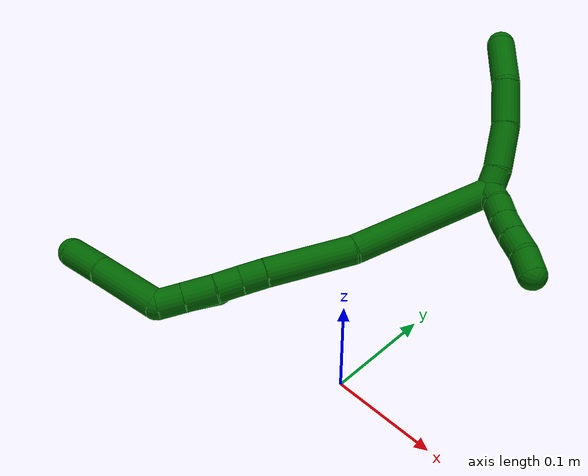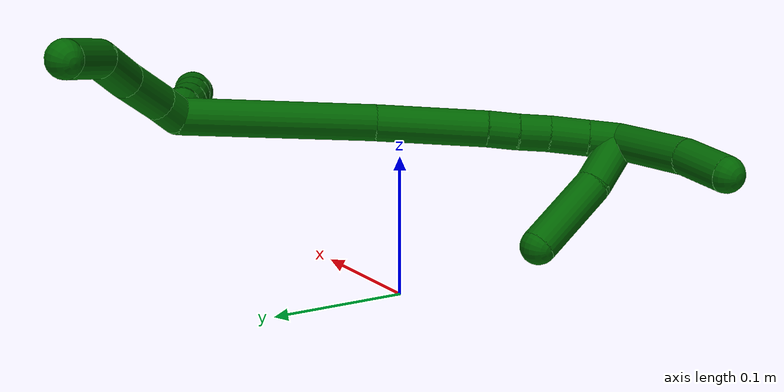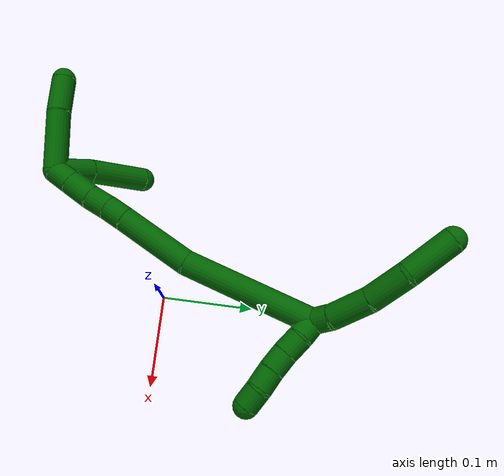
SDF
<sdf version="1.7">
 <world name="default">
  <model name="6">
   <static>0</static>
   <link name="6">
    <collision name="collision-cylinder-e_1_2_8">
     <pose>0.000537 0.010116 -0.000943 -1.66374 0.052789 -0.057936</pose>
     <geometry><cylinder><radius>0.0125</radius><length>0.020348</length></cylinder></geometry>
     <surface>
      <friction><ode><mu>1.16</mu><mu2>1.16</mu2><slip1>0</slip1><slip2>0</slip2></ode></friction>
      <contact><ode><kp>1e+06</kp><kd>1</kd><max_vel>0</max_vel><min_depth>0.001</min_depth></ode></contact>
     </surface>
    </collision>
    <visual name="visual-cylinder-e_1_2_8">
     <pose>0.000537 0.010116 -0.000943 -1.66374 0.052789 -0.057936</pose>
     <geometry><cylinder><radius>0.0125</radius><length>0.020348</length></cylinder></geometry>
     <material><ambient>0 0.392157 0.003922 1</ambient></material>
    </visual>
    <collision name="collision-cylinder-e_2_8_9">
     <pose>0.003218 0.039665 -0.007878 -1.8699 0.105039 -0.142199</pose>
     <geometry><cylinder><radius>0.0125</radius><length>0.040898</length></cylinder></geometry>
     <surface>
      <friction><ode><mu>1.16</mu><mu2>1.16</mu2><slip1>0</slip1><slip2>0</slip2></ode></friction>
      <contact><ode><kp>1e+06</kp><kd>1</kd><max_vel>0</max_vel><min_depth>0.001</min_depth></ode></contact>
     </surface>
    </collision>
    <visual name="visual-cylinder-e_2_8_9">
     <pose>0.003218 0.039665 -0.007878 -1.8699 0.105039 -0.142199</pose>
     <geometry><cylinder><radius>0.0125</radius><length>0.040898</length></cylinder></geometry>
     <material><ambient>0 0.392157 0.003922 1</ambient></material>
    </visual>
    <collision name="collision-cylinder-e_3_9_10">
     <pose>0.006878 0.076992 -0.022752 -2.03153 0.075757 -0.122086</pose>
     <geometry><cylinder><radius>0.0125</radius><length>0.040068</length></cylinder></geometry>
     <surface>
      <friction><ode><mu>1.16</mu><mu2>1.16</mu2><slip1>0</slip1><slip2>0</slip2></ode></friction>
      <contact><ode><kp>1e+06</kp><kd>1</kd><max_vel>0</max_vel><min_depth>0.001</min_depth></ode></contact>
     </surface>
    </collision>
    <visual name="visual-cylinder-e_3_9_10">
     <pose>0.006878 0.076992 -0.022752 -2.03153 0.075757 -0.122086</pose>
     <geometry><cylinder><radius>0.0125</radius><length>0.040068</length></cylinder></geometry>
     <material><ambient>0 0.392157 0.003922 1</ambient></material>
    </visual>
    <collision name="collision-cylinder-e_4_10_6">
     <pose>0.016869 0.112971 -0.045552 -2.22672 0.355586 -0.700003</pose>
     <geometry><cylinder><radius>0.0125</radius><length>0.048686</length></cylinder></geometry>
     <surface>
      <friction><ode><mu>1.16</mu><mu2>1.16</mu2><slip1>0</slip1><slip2>0</slip2></ode></friction>
      <contact><ode><kp>1e+06</kp><kd>1</kd><max_vel>0</max_vel><min_depth>0.001</min_depth></ode></contact>
     </surface>
    </collision>
    <visual name="visual-cylinder-e_4_10_6">
     <pose>0.016869 0.112971 -0.045552 -2.22672 0.355586 -0.700003</pose>
     <geometry><cylinder><radius>0.0125</radius><length>0.048686</length></cylinder></geometry>
     <material><ambient>0 0.392157 0.003922 1</ambient></material>
    </visual>
    <collision name="collision-cylinder-e_1_2_11">
     <pose>-0.0049 -0.004102 0.007692 0.489943 -0.512141 -0.130719</pose>
     <geometry><cylinder><radius>0.0125</radius><length>0.02</length></cylinder></geometry>
     <surface>
      <friction><ode><mu>1.16</mu><mu2>1.16</mu2><slip1>0</slip1><slip2>0</slip2></ode></friction>
      <contact><ode><kp>1e+06</kp><kd>1</kd><max_vel>0</max_vel><min_depth>0.001</min_depth></ode></contact>
     </surface>
    </collision>
    <visual name="visual-cylinder-e_1_2_11">
     <pose>-0.0049 -0.004102 0.007692 0.489943 -0.512141 -0.130719</pose>
     <geometry><cylinder><radius>0.0125</radius><length>0.02</length></cylinder></geometry>
     <material><ambient>0 0.392157 0.003922 1</ambient></material>
    </visual>
    <collision name="collision-cylinder-e_2_11_12">
     <pose>-0.013521 -0.014109 0.022545 0.689446 -0.381129 -0.138308</pose>
     <geometry><cylinder><radius>0.0125</radius><length>0.02</length></cylinder></geometry>
     <surface>
      <friction><ode><mu>1.16</mu><mu2>1.16</mu2><slip1>0</slip1><slip2>0</slip2></ode></friction>
      <contact><ode><kp>1e+06</kp><kd>1</kd><max_vel>0</max_vel><min_depth>0.001</min_depth></ode></contact>
     </surface>
    </collision>
    <visual name="visual-cylinder-e_2_11_12">
     <pose>-0.013521 -0.014109 0.022545 0.689446 -0.381129 -0.138308</pose>
     <geometry><cylinder><radius>0.0125</radius><length>0.02</length></cylinder></geometry>
     <material><ambient>0 0.392157 0.003922 1</ambient></material>
    </visual>
    <collision name="collision-cylinder-e_3_12_13">
     <pose>-0.020819 -0.025211 0.037465 0.590282 -0.36601 -0.112415</pose>
     <geometry><cylinder><radius>0.0125</radius><length>0.02</length></cylinder></geometry>
     <surface>
      <friction><ode><mu>1.16</mu><mu2>1.16</mu2><slip1>0</slip1><slip2>0</slip2></ode></friction>
      <contact><ode><kp>1e+06</kp><kd>1</kd><max_vel>0</max_vel><min_depth>0.001</min_depth></ode></contact>
     </surface>
    </collision>
    <visual name="visual-cylinder-e_3_12_13">
     <pose>-0.020819 -0.025211 0.037465 0.590282 -0.36601 -0.112415</pose>
     <geometry><cylinder><radius>0.0125</radius><length>0.02</length></cylinder></geometry>
     <material><ambient>0 0.392157 0.003922 1</ambient></material>
    </visual>
    <collision name="collision-cylinder-e_4_13_14">
     <pose>-0.02734 -0.035299 0.053434 0.53723 -0.29856 -0.082753</pose>
     <geometry><cylinder><radius>0.0125</radius><length>0.02</length></cylinder></geometry>
     <surface>
      <friction><ode><mu>1.16</mu><mu2>1.16</mu2><slip1>0</slip1><slip2>0</slip2></ode></friction>
      <contact><ode><kp>1e+06</kp><kd>1</kd><max_vel>0</max_vel><min_depth>0.001</min_depth></ode></contact>
     </surface>
    </collision>
    <visual name="visual-cylinder-e_4_13_14">
     <pose>-0.02734 -0.035299 0.053434 0.53723 -0.29856 -0.082753</pose>
     <geometry><cylinder><radius>0.0125</radius><length>0.02</length></cylinder></geometry>
     <material><ambient>0 0.392157 0.003922 1</ambient></material>
    </visual>
    <collision name="collision-cylinder-e_5_14_5">
     <pose>-0.031413 -0.046948 0.068929 0.747971 -0.113446 -0.044563</pose>
     <geometry><cylinder><radius>0.0125</radius><length>0.02</length></cylinder></geometry>
     <surface>
      <friction><ode><mu>1.16</mu><mu2>1.16</mu2><slip1>0</slip1><slip2>0</slip2></ode></friction>
      <contact><ode><kp>1e+06</kp><kd>1</kd><max_vel>0</max_vel><min_depth>0.001</min_depth></ode></contact>
     </surface>
    </collision>
    <visual name="visual-cylinder-e_5_14_5">
     <pose>-0.031413 -0.046948 0.068929 0.747971 -0.113446 -0.044563</pose>
     <geometry><cylinder><radius>0.0125</radius><length>0.02</length></cylinder></geometry>
     <material><ambient>0 0.392157 0.003922 1</ambient></material>
    </visual>
    <collision name="collision-cylinder-e_1_2_15">
     <pose>-0.036749 -0.047503 -0.028563 2.11216 -0.585445 -0.979214</pose>
     <geometry><cylinder><radius>0.0125</radius><length>0.13301</length></cylinder></geometry>
     <surface>
      <friction><ode><mu>1.16</mu><mu2>1.16</mu2><slip1>0</slip1><slip2>0</slip2></ode></friction>
      <contact><ode><kp>1e+06</kp><kd>1</kd><max_vel>0</max_vel><min_depth>0.001</min_depth></ode></contact>
     </surface>
    </collision>
    <visual name="visual-cylinder-e_1_2_15">
     <pose>-0.036749 -0.047503 -0.028563 2.11216 -0.585445 -0.979214</pose>
     <geometry><cylinder><radius>0.0125</radius><length>0.13301</length></cylinder></geometry>
     <material><ambient>0 0.392157 0.003922 1</ambient></material>
    </visual>
    <collision name="collision-cylinder-e_2_15_16">
     <pose>-0.093059 -0.118831 -0.079241 2.31899 -0.541745 -1.13388</pose>
     <geometry><cylinder><radius>0.0125</radius><length>0.075876</length></cylinder></geometry>
     <surface>
      <friction><ode><mu>1.16</mu><mu2>1.16</mu2><slip1>0</slip1><slip2>0</slip2></ode></friction>
      <contact><ode><kp>1e+06</kp><kd>1</kd><max_vel>0</max_vel><min_depth>0.001</min_depth></ode></contact>
     </surface>
    </collision>
    <visual name="visual-cylinder-e_2_15_16">
     <pose>-0.093059 -0.118831 -0.079241 2.31899 -0.541745 -1.13388</pose>
     <geometry><cylinder><radius>0.0125</radius><length>0.075876</length></cylinder></geometry>
     <material><ambient>0 0.392157 0.003922 1</ambient></material>
    </visual>
    <collision name="collision-cylinder-e_3_16_17">
     <pose>-0.117707 -0.149665 -0.107432 2.28499 -0.501426 -1.02239</pose>
     <geometry><cylinder><radius>0.0125</radius><length>0.02116</length></cylinder></geometry>
     <surface>
      <friction><ode><mu>1.16</mu><mu2>1.16</mu2><slip1>0</slip1><slip2>0</slip2></ode></friction>
      <contact><ode><kp>1e+06</kp><kd>1</kd><max_vel>0</max_vel><min_depth>0.001</min_depth></ode></contact>
     </surface>
    </collision>
    <visual name="visual-cylinder-e_3_16_17">
     <pose>-0.117707 -0.149665 -0.107432 2.28499 -0.501426 -1.02239</pose>
     <geometry><cylinder><radius>0.0125</radius><length>0.02116</length></cylinder></geometry>
     <material><ambient>0 0.392157 0.003922 1</ambient></material>
    </visual>
    <collision name="collision-cylinder-e_4_17_18">
     <pose>-0.128383 -0.163822 -0.119163 2.24017 -0.550254 -1.05612</pose>
     <geometry><cylinder><radius>0.0125</radius><length>0.021383</length></cylinder></geometry>
     <surface>
      <friction><ode><mu>1.16</mu><mu2>1.16</mu2><slip1>0</slip1><slip2>0</slip2></ode></friction>
      <contact><ode><kp>1e+06</kp><kd>1</kd><max_vel>0</max_vel><min_depth>0.001</min_depth></ode></contact>
     </surface>
    </collision>
    <visual name="visual-cylinder-e_4_17_18">
     <pose>-0.128383 -0.163822 -0.119163 2.24017 -0.550254 -1.05612</pose>
     <geometry><cylinder><radius>0.0125</radius><length>0.021383</length></cylinder></geometry>
     <material><ambient>0 0.392157 0.003922 1</ambient></material>
    </visual>
    <collision name="collision-cylinder-e_5_18_19">
     <pose>-0.140169 -0.179545 -0.132919 2.3277 -0.48357 -1.03941</pose>
     <geometry><cylinder><radius>0.0125</radius><length>0.026651</length></cylinder></geometry>
     <surface>
      <friction><ode><mu>1.16</mu><mu2>1.16</mu2><slip1>0</slip1><slip2>0</slip2></ode></friction>
      <contact><ode><kp>1e+06</kp><kd>1</kd><max_vel>0</max_vel><min_depth>0.001</min_depth></ode></contact>
     </surface>
    </collision>
    <visual name="visual-cylinder-e_5_18_19">
     <pose>-0.140169 -0.179545 -0.132919 2.3277 -0.48357 -1.03941</pose>
     <geometry><cylinder><radius>0.0125</radius><length>0.026651</length></cylinder></geometry>
     <material><ambient>0 0.392157 0.003922 1</ambient></material>
    </visual>
    <collision name="collision-cylinder-e_6_19_1">
     <pose>-0.151492 -0.195112 -0.147726 2.33545 -0.48681 -1.05469</pose>
     <geometry><cylinder><radius>0.0125</radius><length>0.021921</length></cylinder></geometry>
     <surface>
      <friction><ode><mu>1.16</mu><mu2>1.16</mu2><slip1>0</slip1><slip2>0</slip2></ode></friction>
      <contact><ode><kp>1e+06</kp><kd>1</kd><max_vel>0</max_vel><min_depth>0.001</min_depth></ode></contact>
     </surface>
    </collision>
    <visual name="visual-cylinder-e_6_19_1">
     <pose>-0.151492 -0.195112 -0.147726 2.33545 -0.48681 -1.05469</pose>
     <geometry><cylinder><radius>0.0125</radius><length>0.021921</length></cylinder></geometry>
     <material><ambient>0 0.392157 0.003922 1</ambient></material>
    </visual>
    <collision name="collision-cylinder-e_1_1_20">
     <pose>-0.137499 -0.198054 -0.159086 -2.42558 1.25877 -2.19236</pose>
     <geometry><cylinder><radius>0.0125</radius><length>0.040182</length></cylinder></geometry>
     <surface>
      <friction><ode><mu>1.16</mu><mu2>1.16</mu2><slip1>0</slip1><slip2>0</slip2></ode></friction>
      <contact><ode><kp>1e+06</kp><kd>1</kd><max_vel>0</max_vel><min_depth>0.001</min_depth></ode></contact>
     </surface>
    </collision>
    <visual name="visual-cylinder-e_1_1_20">
     <pose>-0.137499 -0.198054 -0.159086 -2.42558 1.25877 -2.19236</pose>
     <geometry><cylinder><radius>0.0125</radius><length>0.040182</length></cylinder></geometry>
     <material><ambient>0 0.392157 0.003922 1</ambient></material>
    </visual>
    <collision name="collision-cylinder-e_2_20_4">
     <pose>-0.089647 -0.185981 -0.165911 -1.83518 1.28913 -1.55285</pose>
     <geometry><cylinder><radius>0.0125</radius><length>0.059818</length></cylinder></geometry>
     <surface>
      <friction><ode><mu>1.16</mu><mu2>1.16</mu2><slip1>0</slip1><slip2>0</slip2></ode></friction>
      <contact><ode><kp>1e+06</kp><kd>1</kd><max_vel>0</max_vel><min_depth>0.001</min_depth></ode></contact>
     </surface>
    </collision>
    <visual name="visual-cylinder-e_2_20_4">
     <pose>-0.089647 -0.185981 -0.165911 -1.83518 1.28913 -1.55285</pose>
     <geometry><cylinder><radius>0.0125</radius><length>0.059818</length></cylinder></geometry>
     <material><ambient>0 0.392157 0.003922 1</ambient></material>
    </visual>
    <collision name="collision-cylinder-e_1_1_21">
     <pose>-0.158909 -0.200251 -0.185088 -3.08127 -0.074414 1.77939</pose>
     <geometry><cylinder><radius>0.0125</radius><length>0.061593</length></cylinder></geometry>
     <surface>
      <friction><ode><mu>1.16</mu><mu2>1.16</mu2><slip1>0</slip1><slip2>0</slip2></ode></friction>
      <contact><ode><kp>1e+06</kp><kd>1</kd><max_vel>0</max_vel><min_depth>0.001</min_depth></ode></contact>
     </surface>
    </collision>
    <visual name="visual-cylinder-e_1_1_21">
     <pose>-0.158909 -0.200251 -0.185088 -3.08127 -0.074414 1.77939</pose>
     <geometry><cylinder><radius>0.0125</radius><length>0.061593</length></cylinder></geometry>
     <material><ambient>0 0.392157 0.003922 1</ambient></material>
    </visual>
    <collision name="collision-cylinder-e_2_21_3">
     <pose>-0.160124 -0.197864 -0.23491 -3.11366 0.056015 -2.2167</pose>
     <geometry><cylinder><radius>0.0125</radius><length>0.038407</length></cylinder></geometry>
     <surface>
      <friction><ode><mu>1.16</mu><mu2>1.16</mu2><slip1>0</slip1><slip2>0</slip2></ode></friction>
      <contact><ode><kp>1e+06</kp><kd>1</kd><max_vel>0</max_vel><min_depth>0.001</min_depth></ode></contact>
     </surface>
    </collision>
    <visual name="visual-cylinder-e_2_21_3">
     <pose>-0.160124 -0.197864 -0.23491 -3.11366 0.056015 -2.2167</pose>
     <geometry><cylinder><radius>0.0125</radius><length>0.038407</length></cylinder></geometry>
     <material><ambient>0 0.392157 0.003922 1</ambient></material>
    </visual>
    <collision name="collision-sphere-3">
     <pose>-0.159048 -0.197329 -0.254075 0 -0 0</pose>
     <geometry><sphere><radius>0.0125</radius></sphere></geometry>
     <surface>
      <friction><ode><mu>1.16</mu><mu2>1.16</mu2><slip1>0</slip1><slip2>0</slip2></ode></friction>
      <contact><ode><kp>1e+06</kp><kd>1</kd><max_vel>0</max_vel><min_depth>0.001</min_depth></ode></contact>
     </surface>
    </collision>
    <visual name="visual-sphere-3">
     <pose>-0.159048 -0.197329 -0.254075 0 -0 0</pose>
     <geometry><sphere><radius>0.0125</radius></sphere></geometry>
     <material><ambient>0 0.392157 0.003922 1</ambient></material>
    </visual>
    <collision name="collision-sphere-21">
     <pose>-0.161199 -0.1984 -0.215744 0 -0 0</pose>
     <geometry><sphere><radius>0.0125</radius></sphere></geometry>
     <surface>
      <friction><ode><mu>1.16</mu><mu2>1.16</mu2><slip1>0</slip1><slip2>0</slip2></ode></friction>
      <contact><ode><kp>1e+06</kp><kd>1</kd><max_vel>0</max_vel><min_depth>0.001</min_depth></ode></contact>
     </surface>
    </collision>
    <visual name="visual-sphere-21">
     <pose>-0.161199 -0.1984 -0.215744 0 -0 0</pose>
     <geometry><sphere><radius>0.0125</radius></sphere></geometry>
     <material><ambient>0 0.392157 0.003922 1</ambient></material>
    </visual>
    <collision name="collision-sphere-4">
     <pose>-0.060917 -0.177957 -0.168084 0 -0 0</pose>
     <geometry><sphere><radius>0.0125</radius></sphere></geometry>
     <surface>
      <friction><ode><mu>1.16</mu><mu2>1.16</mu2><slip1>0</slip1><slip2>0</slip2></ode></friction>
      <contact><ode><kp>1e+06</kp><kd>1</kd><max_vel>0</max_vel><min_depth>0.001</min_depth></ode></contact>
     </surface>
    </collision>
    <visual name="visual-sphere-4">
     <pose>-0.060917 -0.177957 -0.168084 0 -0 0</pose>
     <geometry><sphere><radius>0.0125</radius></sphere></geometry>
     <material><ambient>0 0.392157 0.003922 1</ambient></material>
    </visual>
    <collision name="collision-sphere-20">
     <pose>-0.118378 -0.194006 -0.163739 0 -0 0</pose>
     <geometry><sphere><radius>0.0125</radius></sphere></geometry>
     <surface>
      <friction><ode><mu>1.16</mu><mu2>1.16</mu2><slip1>0</slip1><slip2>0</slip2></ode></friction>
      <contact><ode><kp>1e+06</kp><kd>1</kd><max_vel>0</max_vel><min_depth>0.001</min_depth></ode></contact>
     </surface>
    </collision>
    <visual name="visual-sphere-20">
     <pose>-0.118378 -0.194006 -0.163739 0 -0 0</pose>
     <geometry><sphere><radius>0.0125</radius></sphere></geometry>
     <material><ambient>0 0.392157 0.003922 1</ambient></material>
    </visual>
    <collision name="collision-sphere-11">
     <pose>-0.009801 -0.008204 0.015383 0 -0 0</pose>
     <geometry><sphere><radius>0.0125</radius></sphere></geometry>
     <surface>
      <friction><ode><mu>1.16</mu><mu2>1.16</mu2><slip1>0</slip1><slip2>0</slip2></ode></friction>
      <contact><ode><kp>1e+06</kp><kd>1</kd><max_vel>0</max_vel><min_depth>0.001</min_depth></ode></contact>
     </surface>
    </collision>
    <visual name="visual-sphere-11">
     <pose>-0.009801 -0.008204 0.015383 0 -0 0</pose>
     <geometry><sphere><radius>0.0125</radius></sphere></geometry>
     <material><ambient>0 0.392157 0.003922 1</ambient></material>
    </visual>
    <collision name="collision-sphere-6">
     <pose>0.025344 0.131055 -0.059469 0 -0 0</pose>
     <geometry><sphere><radius>0.0125</radius></sphere></geometry>
     <surface>
      <friction><ode><mu>1.16</mu><mu2>1.16</mu2><slip1>0</slip1><slip2>0</slip2></ode></friction>
      <contact><ode><kp>1e+06</kp><kd>1</kd><max_vel>0</max_vel><min_depth>0.001</min_depth></ode></contact>
     </surface>
    </collision>
    <visual name="visual-sphere-6">
     <pose>0.025344 0.131055 -0.059469 0 -0 0</pose>
     <geometry><sphere><radius>0.0125</radius></sphere></geometry>
     <material><ambient>0 0.392157 0.003922 1</ambient></material>
    </visual>
    <collision name="collision-sphere-10">
     <pose>0.008394 0.094886 -0.031634 0 -0 0</pose>
     <geometry><sphere><radius>0.0125</radius></sphere></geometry>
     <surface>
      <friction><ode><mu>1.16</mu><mu2>1.16</mu2><slip1>0</slip1><slip2>0</slip2></ode></friction>
      <contact><ode><kp>1e+06</kp><kd>1</kd><max_vel>0</max_vel><min_depth>0.001</min_depth></ode></contact>
     </surface>
    </collision>
    <visual name="visual-sphere-10">
     <pose>0.008394 0.094886 -0.031634 0 -0 0</pose>
     <geometry><sphere><radius>0.0125</radius></sphere></geometry>
     <material><ambient>0 0.392157 0.003922 1</ambient></material>
    </visual>
    <collision name="collision-sphere-9">
     <pose>0.005362 0.059099 -0.01387 0 -0 0</pose>
     <geometry><sphere><radius>0.0125</radius></sphere></geometry>
     <surface>
      <friction><ode><mu>1.16</mu><mu2>1.16</mu2><slip1>0</slip1><slip2>0</slip2></ode></friction>
      <contact><ode><kp>1e+06</kp><kd>1</kd><max_vel>0</max_vel><min_depth>0.001</min_depth></ode></contact>
     </surface>
    </collision>
    <visual name="visual-sphere-9">
     <pose>0.005362 0.059099 -0.01387 0 -0 0</pose>
     <geometry><sphere><radius>0.0125</radius></sphere></geometry>
     <material><ambient>0 0.392157 0.003922 1</ambient></material>
    </visual>
    <collision name="collision-sphere-2">
     <geometry><sphere><radius>0.0125</radius></sphere></geometry>
     <surface>
      <friction><ode><mu>1.16</mu><mu2>1.16</mu2><slip1>0</slip1><slip2>0</slip2></ode></friction>
      <contact><ode><kp>1e+06</kp><kd>1</kd><max_vel>0</max_vel><min_depth>0.001</min_depth></ode></contact>
     </surface>
    </collision>
    <visual name="visual-sphere-2">
     <geometry><sphere><radius>0.0125</radius></sphere></geometry>
     <material><ambient>0 0.392157 0.003922 1</ambient></material>
    </visual>
    <collision name="collision-sphere-19">
     <pose>-0.146365 -0.188122 -0.14102 0 -0 0</pose>
     <geometry><sphere><radius>0.0125</radius></sphere></geometry>
     <surface>
      <friction><ode><mu>1.16</mu><mu2>1.16</mu2><slip1>0</slip1><slip2>0</slip2></ode></friction>
      <contact><ode><kp>1e+06</kp><kd>1</kd><max_vel>0</max_vel><min_depth>0.001</min_depth></ode></contact>
     </surface>
    </collision>
    <visual name="visual-sphere-19">
     <pose>-0.146365 -0.188122 -0.14102 0 -0 0</pose>
     <geometry><sphere><radius>0.0125</radius></sphere></geometry>
     <material><ambient>0 0.392157 0.003922 1</ambient></material>
    </visual>
    <collision name="collision-sphere-8">
     <pose>0.001074 0.020232 -0.001886 0 -0 0</pose>
     <geometry><sphere><radius>0.0125</radius></sphere></geometry>
     <surface>
      <friction><ode><mu>1.16</mu><mu2>1.16</mu2><slip1>0</slip1><slip2>0</slip2></ode></friction>
      <contact><ode><kp>1e+06</kp><kd>1</kd><max_vel>0</max_vel><min_depth>0.001</min_depth></ode></contact>
     </surface>
    </collision>
    <visual name="visual-sphere-8">
     <pose>0.001074 0.020232 -0.001886 0 -0 0</pose>
     <geometry><sphere><radius>0.0125</radius></sphere></geometry>
     <material><ambient>0 0.392157 0.003922 1</ambient></material>
    </visual>
    <collision name="collision-sphere-12">
     <pose>-0.01724 -0.020013 0.029708 0 -0 0</pose>
     <geometry><sphere><radius>0.0125</radius></sphere></geometry>
     <surface>
      <friction><ode><mu>1.16</mu><mu2>1.16</mu2><slip1>0</slip1><slip2>0</slip2></ode></friction>
      <contact><ode><kp>1e+06</kp><kd>1</kd><max_vel>0</max_vel><min_depth>0.001</min_depth></ode></contact>
     </surface>
    </collision>
    <visual name="visual-sphere-12">
     <pose>-0.01724 -0.020013 0.029708 0 -0 0</pose>
     <geometry><sphere><radius>0.0125</radius></sphere></geometry>
     <material><ambient>0 0.392157 0.003922 1</ambient></material>
    </visual>
    <collision name="collision-sphere-13">
     <pose>-0.024398 -0.030408 0.045223 0 -0 0</pose>
     <geometry><sphere><radius>0.0125</radius></sphere></geometry>
     <surface>
      <friction><ode><mu>1.16</mu><mu2>1.16</mu2><slip1>0</slip1><slip2>0</slip2></ode></friction>
      <contact><ode><kp>1e+06</kp><kd>1</kd><max_vel>0</max_vel><min_depth>0.001</min_depth></ode></contact>
     </surface>
    </collision>
    <visual name="visual-sphere-13">
     <pose>-0.024398 -0.030408 0.045223 0 -0 0</pose>
     <geometry><sphere><radius>0.0125</radius></sphere></geometry>
     <material><ambient>0 0.392157 0.003922 1</ambient></material>
    </visual>
    <collision name="collision-sphere-14">
     <pose>-0.030281 -0.04019 0.061645 0 -0 0</pose>
     <geometry><sphere><radius>0.0125</radius></sphere></geometry>
     <surface>
      <friction><ode><mu>1.16</mu><mu2>1.16</mu2><slip1>0</slip1><slip2>0</slip2></ode></friction>
      <contact><ode><kp>1e+06</kp><kd>1</kd><max_vel>0</max_vel><min_depth>0.001</min_depth></ode></contact>
     </surface>
    </collision>
    <visual name="visual-sphere-14">
     <pose>-0.030281 -0.04019 0.061645 0 -0 0</pose>
     <geometry><sphere><radius>0.0125</radius></sphere></geometry>
     <material><ambient>0 0.392157 0.003922 1</ambient></material>
    </visual>
    <collision name="collision-sphere-5">
     <pose>-0.032545 -0.053706 0.076212 0 -0 0</pose>
     <geometry><sphere><radius>0.0125</radius></sphere></geometry>
     <surface>
      <friction><ode><mu>1.16</mu><mu2>1.16</mu2><slip1>0</slip1><slip2>0</slip2></ode></friction>
      <contact><ode><kp>1e+06</kp><kd>1</kd><max_vel>0</max_vel><min_depth>0.001</min_depth></ode></contact>
     </surface>
    </collision>
    <visual name="visual-sphere-5">
     <pose>-0.032545 -0.053706 0.076212 0 -0 0</pose>
     <geometry><sphere><radius>0.0125</radius></sphere></geometry>
     <material><ambient>0 0.392157 0.003922 1</ambient></material>
    </visual>
    <collision name="collision-sphere-15">
     <pose>-0.073497 -0.095007 -0.057127 0 -0 0</pose>
     <geometry><sphere><radius>0.0125</radius></sphere></geometry>
     <surface>
      <friction><ode><mu>1.16</mu><mu2>1.16</mu2><slip1>0</slip1><slip2>0</slip2></ode></friction>
      <contact><ode><kp>1e+06</kp><kd>1</kd><max_vel>0</max_vel><min_depth>0.001</min_depth></ode></contact>
     </surface>
    </collision>
    <visual name="visual-sphere-15">
     <pose>-0.073497 -0.095007 -0.057127 0 -0 0</pose>
     <geometry><sphere><radius>0.0125</radius></sphere></geometry>
     <material><ambient>0 0.392157 0.003922 1</ambient></material>
    </visual>
    <collision name="collision-sphere-16">
     <pose>-0.112621 -0.142655 -0.101355 0 -0 0</pose>
     <geometry><sphere><radius>0.0125</radius></sphere></geometry>
     <surface>
      <friction><ode><mu>1.16</mu><mu2>1.16</mu2><slip1>0</slip1><slip2>0</slip2></ode></friction>
      <contact><ode><kp>1e+06</kp><kd>1</kd><max_vel>0</max_vel><min_depth>0.001</min_depth></ode></contact>
     </surface>
    </collision>
    <visual name="visual-sphere-16">
     <pose>-0.112621 -0.142655 -0.101355 0 -0 0</pose>
     <geometry><sphere><radius>0.0125</radius></sphere></geometry>
     <material><ambient>0 0.392157 0.003922 1</ambient></material>
    </visual>
    <collision name="collision-sphere-17">
     <pose>-0.122792 -0.156675 -0.113508 0 -0 0</pose>
     <geometry><sphere><radius>0.0125</radius></sphere></geometry>
     <surface>
      <friction><ode><mu>1.16</mu><mu2>1.16</mu2><slip1>0</slip1><slip2>0</slip2></ode></friction>
      <contact><ode><kp>1e+06</kp><kd>1</kd><max_vel>0</max_vel><min_depth>0.001</min_depth></ode></contact>
     </surface>
    </collision>
    <visual name="visual-sphere-17">
     <pose>-0.122792 -0.156675 -0.113508 0 -0 0</pose>
     <geometry><sphere><radius>0.0125</radius></sphere></geometry>
     <material><ambient>0 0.392157 0.003922 1</ambient></material>
    </visual>
    <collision name="collision-sphere-18">
     <pose>-0.133974 -0.170969 -0.124818 0 -0 0</pose>
     <geometry><sphere><radius>0.0125</radius></sphere></geometry>
     <surface>
      <friction><ode><mu>1.16</mu><mu2>1.16</mu2><slip1>0</slip1><slip2>0</slip2></ode></friction>
      <contact><ode><kp>1e+06</kp><kd>1</kd><max_vel>0</max_vel><min_depth>0.001</min_depth></ode></contact>
     </surface>
    </collision>
    <visual name="visual-sphere-18">
     <pose>-0.133974 -0.170969 -0.124818 0 -0 0</pose>
     <geometry><sphere><radius>0.0125</radius></sphere></geometry>
     <material><ambient>0 0.392157 0.003922 1</ambient></material>
    </visual>
    <collision name="collision-sphere-1">
     <pose>-0.156619 -0.202103 -0.154433 0 -0 0</pose>
     <geometry><sphere><radius>0.0125</radius></sphere></geometry>
     <surface>
      <friction><ode><mu>1.16</mu><mu2>1.16</mu2><slip1>0</slip1><slip2>0</slip2></ode></friction>
      <contact><ode><kp>1e+06</kp><kd>1</kd><max_vel>0</max_vel><min_depth>0.001</min_depth></ode></contact>
     </surface>
    </collision>
    <visual name="visual-sphere-1">
     <pose>-0.156619 -0.202103 -0.154433 0 -0 0</pose>
     <geometry><sphere><radius>0.0125</radius></sphere></geometry>
     <material><ambient>0 0.392157 0.003922 1</ambient></material>
    </visual>
    <inertial>
     <pose>-0.069049 -0.082912 -0.077096 0 -0 0</pose>
     <mass>0.75</mass>
     <inertia>
      <ixx>-4.9e-05</ixx>
      <ixy>0</ixy>
      <ixz>0</ixz>
      <iyy>-0.000129</iyy>
      <iyz>0</iyz>
      <izz>0.000234</izz>
     </inertia>
    </inertial>
   </link>
   <pose>0.02214 0.157235 0.142787 1.44815 0.855407 1.5987</pose>
  </model>
 </world>
</sdf>
